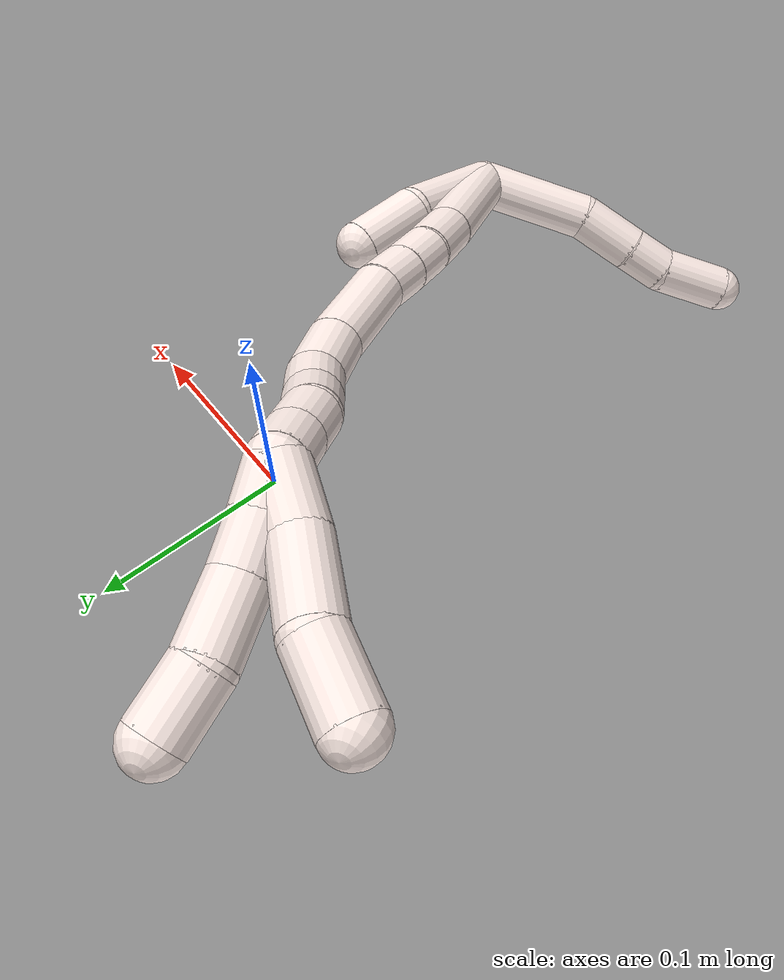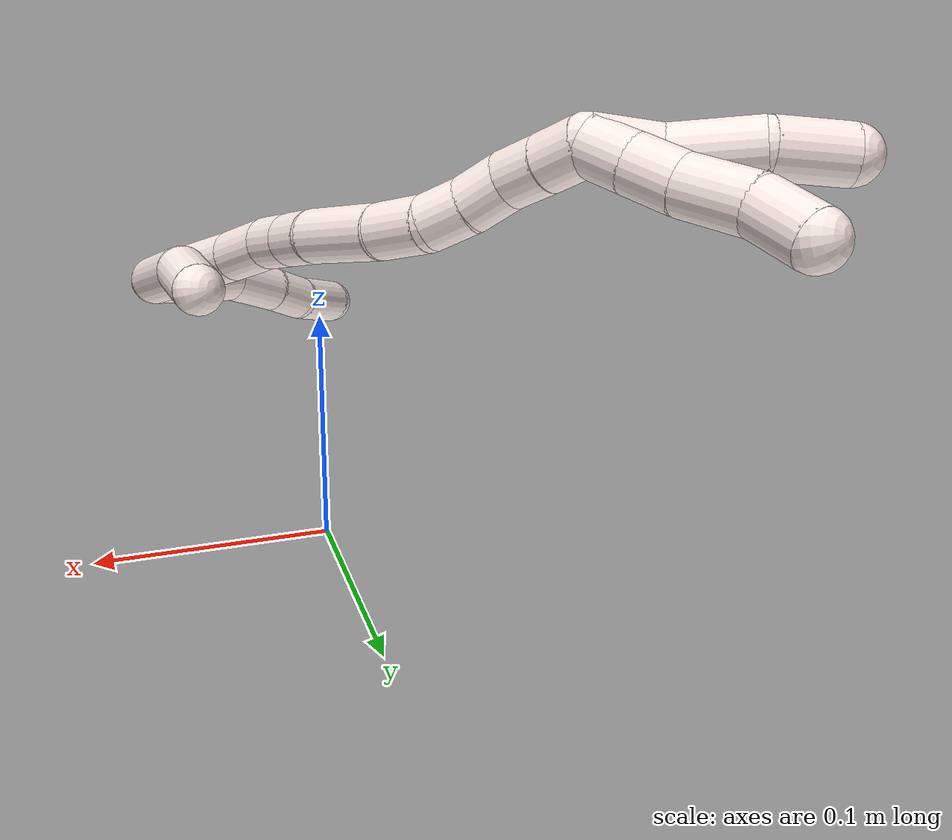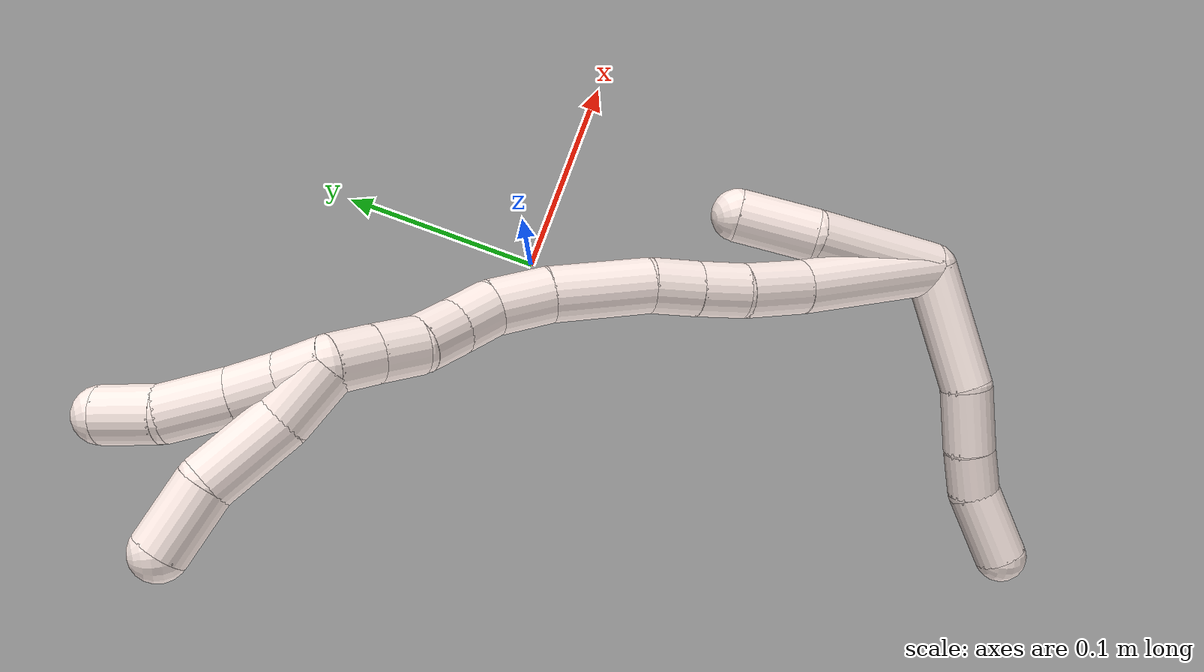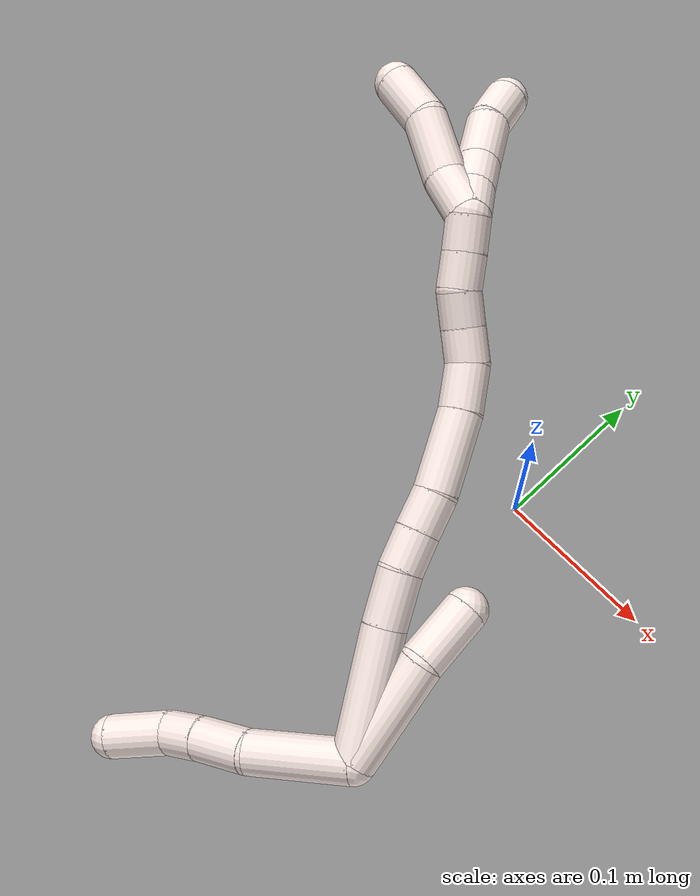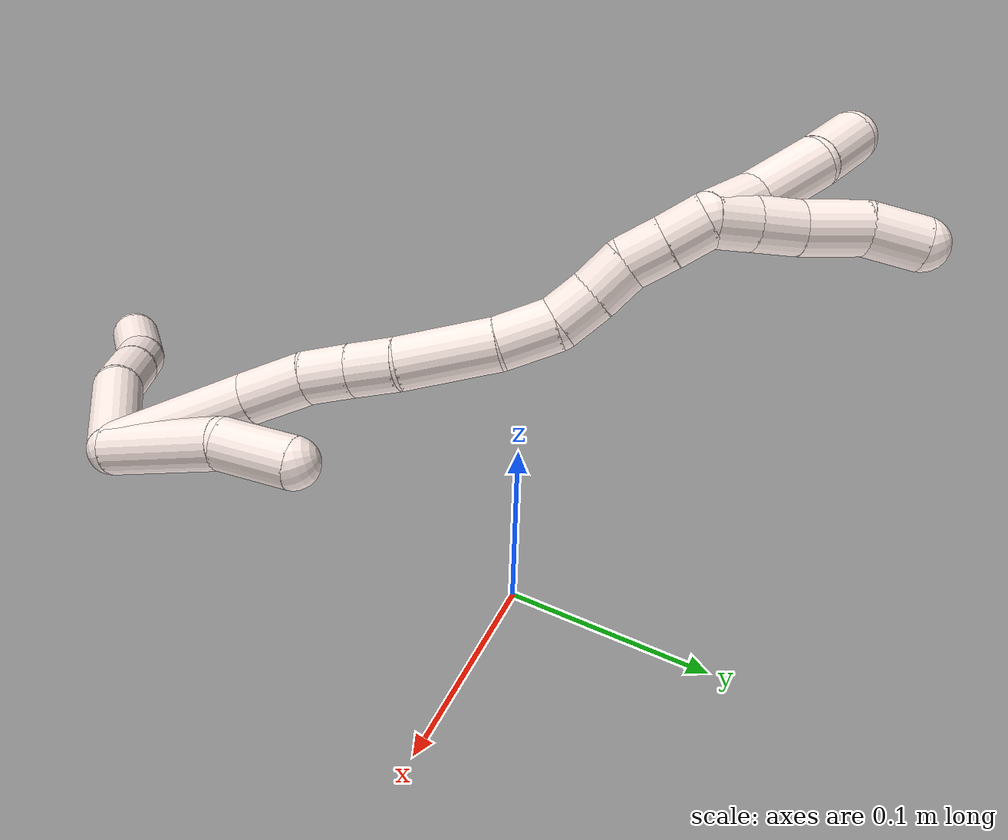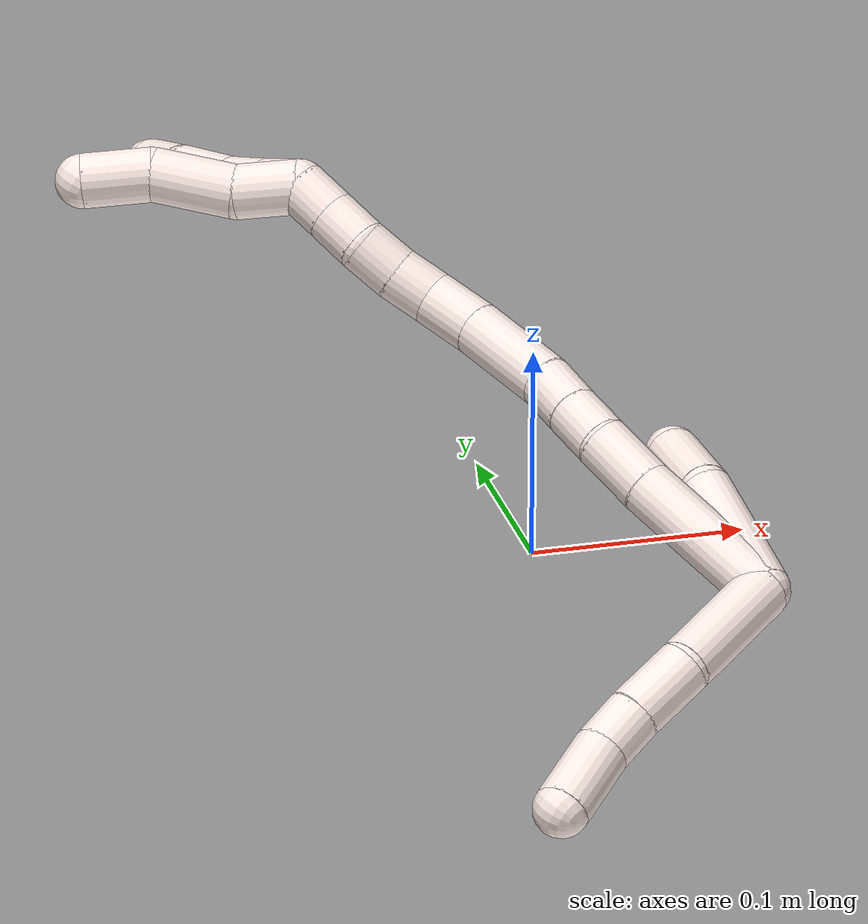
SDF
<sdf version="1.7">
 <world name="default">
  <model name="11">
   <static>0</static>
   <link name="11">
    <collision name="collision-cylinder-e_1_2_8">
     <pose>-0.022499 -0.018658 -0.004541 1.80955 -0.864289 -1.06153</pose>
     <geometry><cylinder><radius>0.0125</radius><length>0.059159</length></cylinder></geometry>
     <surface>
      <friction><ode><mu>1.16</mu><mu2>1.16</mu2><slip1>0</slip1><slip2>0</slip2></ode></friction>
      <contact><ode><kp>1e+06</kp><kd>1</kd><max_vel>0</max_vel><min_depth>0.001</min_depth></ode></contact>
     </surface>
    </collision>
    <visual name="visual-cylinder-e_1_2_8">
     <pose>-0.022499 -0.018658 -0.004541 1.80955 -0.864289 -1.06153</pose>
     <geometry><cylinder><radius>0.0125</radius><length>0.059159</length></cylinder></geometry>
     <material><ambient>1 0.933333 0.909804 1</ambient></material>
    </visual>
    <collision name="collision-cylinder-e_2_8_9">
     <pose>-0.059322 -0.044368 -0.009458 1.624 -1.11271 -1.161</pose>
     <geometry><cylinder><radius>0.0125</radius><length>0.03194</length></cylinder></geometry>
     <surface>
      <friction><ode><mu>1.16</mu><mu2>1.16</mu2><slip1>0</slip1><slip2>0</slip2></ode></friction>
      <contact><ode><kp>1e+06</kp><kd>1</kd><max_vel>0</max_vel><min_depth>0.001</min_depth></ode></contact>
     </surface>
    </collision>
    <visual name="visual-cylinder-e_2_8_9">
     <pose>-0.059322 -0.044368 -0.009458 1.624 -1.11271 -1.161</pose>
     <geometry><cylinder><radius>0.0125</radius><length>0.03194</length></cylinder></geometry>
     <material><ambient>1 0.933333 0.909804 1</ambient></material>
    </visual>
    <collision name="collision-cylinder-e_3_9_10">
     <pose>-0.0837 -0.056023 -0.010849 1.78788 -1.13245 -1.33862</pose>
     <geometry><cylinder><radius>0.0125</radius><length>0.022211</length></cylinder></geometry>
     <surface>
      <friction><ode><mu>1.16</mu><mu2>1.16</mu2><slip1>0</slip1><slip2>0</slip2></ode></friction>
      <contact><ode><kp>1e+06</kp><kd>1</kd><max_vel>0</max_vel><min_depth>0.001</min_depth></ode></contact>
     </surface>
    </collision>
    <visual name="visual-cylinder-e_3_9_10">
     <pose>-0.0837 -0.056023 -0.010849 1.78788 -1.13245 -1.33862</pose>
     <geometry><cylinder><radius>0.0125</radius><length>0.022211</length></cylinder></geometry>
     <material><ambient>1 0.933333 0.909804 1</ambient></material>
    </visual>
    <collision name="collision-cylinder-e_4_10_6">
     <pose>-0.108095 -0.070746 -0.017205 2.0564 -0.897298 -1.34749</pose>
     <geometry><cylinder><radius>0.0125</radius><length>0.036691</length></cylinder></geometry>
     <surface>
      <friction><ode><mu>1.16</mu><mu2>1.16</mu2><slip1>0</slip1><slip2>0</slip2></ode></friction>
      <contact><ode><kp>1e+06</kp><kd>1</kd><max_vel>0</max_vel><min_depth>0.001</min_depth></ode></contact>
     </surface>
    </collision>
    <visual name="visual-cylinder-e_4_10_6">
     <pose>-0.108095 -0.070746 -0.017205 2.0564 -0.897298 -1.34749</pose>
     <geometry><cylinder><radius>0.0125</radius><length>0.036691</length></cylinder></geometry>
     <material><ambient>1 0.933333 0.909804 1</ambient></material>
    </visual>
    <collision name="collision-cylinder-e_1_2_11">
     <pose>0.00972 0.007414 0.029017 -0.25014 0.313811 -0.039776</pose>
     <geometry><cylinder><radius>0.0125</radius><length>0.062975</length></cylinder></geometry>
     <surface>
      <friction><ode><mu>1.16</mu><mu2>1.16</mu2><slip1>0</slip1><slip2>0</slip2></ode></friction>
      <contact><ode><kp>1e+06</kp><kd>1</kd><max_vel>0</max_vel><min_depth>0.001</min_depth></ode></contact>
     </surface>
    </collision>
    <visual name="visual-cylinder-e_1_2_11">
     <pose>0.00972 0.007414 0.029017 -0.25014 0.313811 -0.039776</pose>
     <geometry><cylinder><radius>0.0125</radius><length>0.062975</length></cylinder></geometry>
     <material><ambient>1 0.933333 0.909804 1</ambient></material>
    </visual>
    <collision name="collision-cylinder-e_2_11_5">
     <pose>0.021684 0.023927 0.074 -0.518055 0.121541 -0.032243</pose>
     <geometry><cylinder><radius>0.0125</radius><length>0.037025</length></cylinder></geometry>
     <surface>
      <friction><ode><mu>1.16</mu><mu2>1.16</mu2><slip1>0</slip1><slip2>0</slip2></ode></friction>
      <contact><ode><kp>1e+06</kp><kd>1</kd><max_vel>0</max_vel><min_depth>0.001</min_depth></ode></contact>
     </surface>
    </collision>
    <visual name="visual-cylinder-e_2_11_5">
     <pose>0.021684 0.023927 0.074 -0.518055 0.121541 -0.032243</pose>
     <geometry><cylinder><radius>0.0125</radius><length>0.037025</length></cylinder></geometry>
     <material><ambient>1 0.933333 0.909804 1</ambient></material>
    </visual>
    <collision name="collision-cylinder-e_1_2_12">
     <pose>0.003035 -0.001858 0.036033 0.051508 0.083914 0.002163</pose>
     <geometry><cylinder><radius>0.0125</radius><length>0.072417</length></cylinder></geometry>
     <surface>
      <friction><ode><mu>1.16</mu><mu2>1.16</mu2><slip1>0</slip1><slip2>0</slip2></ode></friction>
      <contact><ode><kp>1e+06</kp><kd>1</kd><max_vel>0</max_vel><min_depth>0.001</min_depth></ode></contact>
     </surface>
    </collision>
    <visual name="visual-cylinder-e_1_2_12">
     <pose>0.003035 -0.001858 0.036033 0.051508 0.083914 0.002163</pose>
     <geometry><cylinder><radius>0.0125</radius><length>0.072417</length></cylinder></geometry>
     <material><ambient>1 0.933333 0.909804 1</ambient></material>
    </visual>
    <collision name="collision-cylinder-e_2_12_13">
     <pose>0.008223 -0.004095 0.087219 0.025064 0.141098 0.001771</pose>
     <geometry><cylinder><radius>0.0125</radius><length>0.030619</length></cylinder></geometry>
     <surface>
      <friction><ode><mu>1.16</mu><mu2>1.16</mu2><slip1>0</slip1><slip2>0</slip2></ode></friction>
      <contact><ode><kp>1e+06</kp><kd>1</kd><max_vel>0</max_vel><min_depth>0.001</min_depth></ode></contact>
     </surface>
    </collision>
    <visual name="visual-cylinder-e_2_12_13">
     <pose>0.008223 -0.004095 0.087219 0.025064 0.141098 0.001771</pose>
     <geometry><cylinder><radius>0.0125</radius><length>0.030619</length></cylinder></geometry>
     <material><ambient>1 0.933333 0.909804 1</ambient></material>
    </visual>
    <collision name="collision-cylinder-e_3_13_14">
     <pose>0.011898 -0.002886 0.113285 -0.144575 0.137201 -0.009951</pose>
     <geometry><cylinder><radius>0.0125</radius><length>0.022265</length></cylinder></geometry>
     <surface>
      <friction><ode><mu>1.16</mu><mu2>1.16</mu2><slip1>0</slip1><slip2>0</slip2></ode></friction>
      <contact><ode><kp>1e+06</kp><kd>1</kd><max_vel>0</max_vel><min_depth>0.001</min_depth></ode></contact>
     </surface>
    </collision>
    <visual name="visual-cylinder-e_3_13_14">
     <pose>0.011898 -0.002886 0.113285 -0.144575 0.137201 -0.009951</pose>
     <geometry><cylinder><radius>0.0125</radius><length>0.022265</length></cylinder></geometry>
     <material><ambient>1 0.933333 0.909804 1</ambient></material>
    </visual>
    <collision name="collision-cylinder-e_4_14_15">
     <pose>0.015175 0.000517 0.135011 -0.166276 0.158623 -0.013246</pose>
     <geometry><cylinder><radius>0.0125</radius><length>0.022209</length></cylinder></geometry>
     <surface>
      <friction><ode><mu>1.16</mu><mu2>1.16</mu2><slip1>0</slip1><slip2>0</slip2></ode></friction>
      <contact><ode><kp>1e+06</kp><kd>1</kd><max_vel>0</max_vel><min_depth>0.001</min_depth></ode></contact>
     </surface>
    </collision>
    <visual name="visual-cylinder-e_4_14_15">
     <pose>0.015175 0.000517 0.135011 -0.166276 0.158623 -0.013246</pose>
     <geometry><cylinder><radius>0.0125</radius><length>0.022209</length></cylinder></geometry>
     <material><ambient>1 0.933333 0.909804 1</ambient></material>
    </visual>
    <collision name="collision-cylinder-e_5_15_16">
     <pose>0.017354 0.004345 0.168634 -0.087997 0.018575 -0.000818</pose>
     <geometry><cylinder><radius>0.0125</radius><length>0.045805</length></cylinder></geometry>
     <surface>
      <friction><ode><mu>1.16</mu><mu2>1.16</mu2><slip1>0</slip1><slip2>0</slip2></ode></friction>
      <contact><ode><kp>1e+06</kp><kd>1</kd><max_vel>0</max_vel><min_depth>0.001</min_depth></ode></contact>
     </surface>
    </collision>
    <visual name="visual-cylinder-e_5_15_16">
     <pose>0.017354 0.004345 0.168634 -0.087997 0.018575 -0.000818</pose>
     <geometry><cylinder><radius>0.0125</radius><length>0.045805</length></cylinder></geometry>
     <material><ambient>1 0.933333 0.909804 1</ambient></material>
    </visual>
    <collision name="collision-cylinder-e_6_16_17">
     <pose>0.017403 0.005605 0.204757 0.056412 -0.02827 -0.000798</pose>
     <geometry><cylinder><radius>0.0125</radius><length>0.026679</length></cylinder></geometry>
     <surface>
      <friction><ode><mu>1.16</mu><mu2>1.16</mu2><slip1>0</slip1><slip2>0</slip2></ode></friction>
      <contact><ode><kp>1e+06</kp><kd>1</kd><max_vel>0</max_vel><min_depth>0.001</min_depth></ode></contact>
     </surface>
    </collision>
    <visual name="visual-cylinder-e_6_16_17">
     <pose>0.017403 0.005605 0.204757 0.056412 -0.02827 -0.000798</pose>
     <geometry><cylinder><radius>0.0125</radius><length>0.026679</length></cylinder></geometry>
     <material><ambient>1 0.933333 0.909804 1</ambient></material>
    </visual>
    <collision name="collision-cylinder-e_7_17_18">
     <pose>0.016705 0.001002 0.227297 0.395407 -0.032037 -0.006418</pose>
     <geometry><cylinder><radius>0.0125</radius><length>0.020006</length></cylinder></geometry>
     <surface>
      <friction><ode><mu>1.16</mu><mu2>1.16</mu2><slip1>0</slip1><slip2>0</slip2></ode></friction>
      <contact><ode><kp>1e+06</kp><kd>1</kd><max_vel>0</max_vel><min_depth>0.001</min_depth></ode></contact>
     </surface>
    </collision>
    <visual name="visual-cylinder-e_7_17_18">
     <pose>0.016705 0.001002 0.227297 0.395407 -0.032037 -0.006418</pose>
     <geometry><cylinder><radius>0.0125</radius><length>0.020006</length></cylinder></geometry>
     <material><ambient>1 0.933333 0.909804 1</ambient></material>
    </visual>
    <collision name="collision-cylinder-e_8_18_19">
     <pose>0.017094 -0.007356 0.245422 0.468793 0.071031 0.016968</pose>
     <geometry><cylinder><radius>0.0125</radius><length>0.02</length></cylinder></geometry>
     <surface>
      <friction><ode><mu>1.16</mu><mu2>1.16</mu2><slip1>0</slip1><slip2>0</slip2></ode></friction>
      <contact><ode><kp>1e+06</kp><kd>1</kd><max_vel>0</max_vel><min_depth>0.001</min_depth></ode></contact>
     </surface>
    </collision>
    <visual name="visual-cylinder-e_8_18_19">
     <pose>0.017094 -0.007356 0.245422 0.468793 0.071031 0.016968</pose>
     <geometry><cylinder><radius>0.0125</radius><length>0.02</length></cylinder></geometry>
     <material><ambient>1 0.933333 0.909804 1</ambient></material>
    </visual>
    <collision name="collision-cylinder-e_9_19_20">
     <pose>0.018968 -0.01356 0.264107 0.171736 0.116628 0.010051</pose>
     <geometry><cylinder><radius>0.0125</radius><length>0.02</length></cylinder></geometry>
     <surface>
      <friction><ode><mu>1.16</mu><mu2>1.16</mu2><slip1>0</slip1><slip2>0</slip2></ode></friction>
      <contact><ode><kp>1e+06</kp><kd>1</kd><max_vel>0</max_vel><min_depth>0.001</min_depth></ode></contact>
     </surface>
    </collision>
    <visual name="visual-cylinder-e_9_19_20">
     <pose>0.018968 -0.01356 0.264107 0.171736 0.116628 0.010051</pose>
     <geometry><cylinder><radius>0.0125</radius><length>0.02</length></cylinder></geometry>
     <material><ambient>1 0.933333 0.909804 1</ambient></material>
    </visual>
    <collision name="collision-cylinder-e_10_20_1">
     <pose>0.021268 -0.017293 0.283617 0.20636 0.11386 0.011803</pose>
     <geometry><cylinder><radius>0.0125</radius><length>0.02</length></cylinder></geometry>
     <surface>
      <friction><ode><mu>1.16</mu><mu2>1.16</mu2><slip1>0</slip1><slip2>0</slip2></ode></friction>
      <contact><ode><kp>1e+06</kp><kd>1</kd><max_vel>0</max_vel><min_depth>0.001</min_depth></ode></contact>
     </surface>
    </collision>
    <visual name="visual-cylinder-e_10_20_1">
     <pose>0.021268 -0.017293 0.283617 0.20636 0.11386 0.011803</pose>
     <geometry><cylinder><radius>0.0125</radius><length>0.02</length></cylinder></geometry>
     <material><ambient>1 0.933333 0.909804 1</ambient></material>
    </visual>
    <collision name="collision-cylinder-e_1_1_21">
     <pose>0.017949 -0.016794 0.302005 -0.28466 -0.458424 0.066842</pose>
     <geometry><cylinder><radius>0.0125</radius><length>0.02013</length></cylinder></geometry>
     <surface>
      <friction><ode><mu>1.16</mu><mu2>1.16</mu2><slip1>0</slip1><slip2>0</slip2></ode></friction>
      <contact><ode><kp>1e+06</kp><kd>1</kd><max_vel>0</max_vel><min_depth>0.001</min_depth></ode></contact>
     </surface>
    </collision>
    <visual name="visual-cylinder-e_1_1_21">
     <pose>0.017949 -0.016794 0.302005 -0.28466 -0.458424 0.066842</pose>
     <geometry><cylinder><radius>0.0125</radius><length>0.02013</length></cylinder></geometry>
     <material><ambient>1 0.933333 0.909804 1</ambient></material>
    </visual>
    <collision name="collision-cylinder-e_2_21_22">
     <pose>0.009052 -0.01124 0.320367 -0.301733 -0.412323 0.063564</pose>
     <geometry><cylinder><radius>0.0125</radius><length>0.022175</length></cylinder></geometry>
     <surface>
      <friction><ode><mu>1.16</mu><mu2>1.16</mu2><slip1>0</slip1><slip2>0</slip2></ode></friction>
      <contact><ode><kp>1e+06</kp><kd>1</kd><max_vel>0</max_vel><min_depth>0.001</min_depth></ode></contact>
     </surface>
    </collision>
    <visual name="visual-cylinder-e_2_21_22">
     <pose>0.009052 -0.01124 0.320367 -0.301733 -0.412323 0.063564</pose>
     <geometry><cylinder><radius>0.0125</radius><length>0.022175</length></cylinder></geometry>
     <material><ambient>1 0.933333 0.909804 1</ambient></material>
    </visual>
    <collision name="collision-cylinder-e_3_22_23">
     <pose>7.8e-05 -0.004834 0.344427 -0.231658 -0.297923 0.034918</pose>
     <geometry><cylinder><radius>0.0125</radius><length>0.03087</length></cylinder></geometry>
     <surface>
      <friction><ode><mu>1.16</mu><mu2>1.16</mu2><slip1>0</slip1><slip2>0</slip2></ode></friction>
      <contact><ode><kp>1e+06</kp><kd>1</kd><max_vel>0</max_vel><min_depth>0.001</min_depth></ode></contact>
     </surface>
    </collision>
    <visual name="visual-cylinder-e_3_22_23">
     <pose>7.8e-05 -0.004834 0.344427 -0.231658 -0.297923 0.034918</pose>
     <geometry><cylinder><radius>0.0125</radius><length>0.03087</length></cylinder></geometry>
     <material><ambient>1 0.933333 0.909804 1</ambient></material>
    </visual>
    <collision name="collision-cylinder-e_4_23_4">
     <pose>-0.007616 0.005041 0.370093 -0.520915 -0.238124 0.063743</pose>
     <geometry><cylinder><radius>0.0125</radius><length>0.026825</length></cylinder></geometry>
     <surface>
      <friction><ode><mu>1.16</mu><mu2>1.16</mu2><slip1>0</slip1><slip2>0</slip2></ode></friction>
      <contact><ode><kp>1e+06</kp><kd>1</kd><max_vel>0</max_vel><min_depth>0.001</min_depth></ode></contact>
     </surface>
    </collision>
    <visual name="visual-cylinder-e_4_23_4">
     <pose>-0.007616 0.005041 0.370093 -0.520915 -0.238124 0.063743</pose>
     <geometry><cylinder><radius>0.0125</radius><length>0.026825</length></cylinder></geometry>
     <material><ambient>1 0.933333 0.909804 1</ambient></material>
    </visual>
    <collision name="collision-cylinder-e_1_1_24">
     <pose>0.013008 -0.022783 0.303962 0.314529 -0.699413 -0.115534</pose>
     <geometry><cylinder><radius>0.0125</radius><length>0.029188</length></cylinder></geometry>
     <surface>
      <friction><ode><mu>1.16</mu><mu2>1.16</mu2><slip1>0</slip1><slip2>0</slip2></ode></friction>
      <contact><ode><kp>1e+06</kp><kd>1</kd><max_vel>0</max_vel><min_depth>0.001</min_depth></ode></contact>
     </surface>
    </collision>
    <visual name="visual-cylinder-e_1_1_24">
     <pose>0.013008 -0.022783 0.303962 0.314529 -0.699413 -0.115534</pose>
     <geometry><cylinder><radius>0.0125</radius><length>0.029188</length></cylinder></geometry>
     <material><ambient>1 0.933333 0.909804 1</ambient></material>
    </visual>
    <collision name="collision-cylinder-e_2_24_25">
     <pose>-0.004171 -0.032079 0.331345 0.335259 -0.413243 -0.070911</pose>
     <geometry><cylinder><radius>0.0125</radius><length>0.038768</length></cylinder></geometry>
     <surface>
      <friction><ode><mu>1.16</mu><mu2>1.16</mu2><slip1>0</slip1><slip2>0</slip2></ode></friction>
      <contact><ode><kp>1e+06</kp><kd>1</kd><max_vel>0</max_vel><min_depth>0.001</min_depth></ode></contact>
     </surface>
    </collision>
    <visual name="visual-cylinder-e_2_24_25">
     <pose>-0.004171 -0.032079 0.331345 0.335259 -0.413243 -0.070911</pose>
     <geometry><cylinder><radius>0.0125</radius><length>0.038768</length></cylinder></geometry>
     <material><ambient>1 0.933333 0.909804 1</ambient></material>
    </visual>
    <collision name="collision-cylinder-e_3_25_3">
     <pose>-0.02249 -0.043467 0.358831 0.477471 -0.717524 -0.182024</pose>
     <geometry><cylinder><radius>0.0125</radius><length>0.032044</length></cylinder></geometry>
     <surface>
      <friction><ode><mu>1.16</mu><mu2>1.16</mu2><slip1>0</slip1><slip2>0</slip2></ode></friction>
      <contact><ode><kp>1e+06</kp><kd>1</kd><max_vel>0</max_vel><min_depth>0.001</min_depth></ode></contact>
     </surface>
    </collision>
    <visual name="visual-cylinder-e_3_25_3">
     <pose>-0.02249 -0.043467 0.358831 0.477471 -0.717524 -0.182024</pose>
     <geometry><cylinder><radius>0.0125</radius><length>0.032044</length></cylinder></geometry>
     <material><ambient>1 0.933333 0.909804 1</ambient></material>
    </visual>
    <collision name="collision-sphere-3">
     <pose>-0.033025 -0.049014 0.369552 0 -0 0</pose>
     <geometry><sphere><radius>0.0125</radius></sphere></geometry>
     <surface>
      <friction><ode><mu>1.16</mu><mu2>1.16</mu2><slip1>0</slip1><slip2>0</slip2></ode></friction>
      <contact><ode><kp>1e+06</kp><kd>1</kd><max_vel>0</max_vel><min_depth>0.001</min_depth></ode></contact>
     </surface>
    </collision>
    <visual name="visual-sphere-3">
     <pose>-0.033025 -0.049014 0.369552 0 -0 0</pose>
     <geometry><sphere><radius>0.0125</radius></sphere></geometry>
     <material><ambient>1 0.933333 0.909804 1</ambient></material>
    </visual>
    <collision name="collision-sphere-25">
     <pose>-0.011955 -0.03792 0.348109 0 -0 0</pose>
     <geometry><sphere><radius>0.0125</radius></sphere></geometry>
     <surface>
      <friction><ode><mu>1.16</mu><mu2>1.16</mu2><slip1>0</slip1><slip2>0</slip2></ode></friction>
      <contact><ode><kp>1e+06</kp><kd>1</kd><max_vel>0</max_vel><min_depth>0.001</min_depth></ode></contact>
     </surface>
    </collision>
    <visual name="visual-sphere-25">
     <pose>-0.011955 -0.03792 0.348109 0 -0 0</pose>
     <geometry><sphere><radius>0.0125</radius></sphere></geometry>
     <material><ambient>1 0.933333 0.909804 1</ambient></material>
    </visual>
    <collision name="collision-sphere-24">
     <pose>0.003613 -0.026238 0.314581 0 -0 0</pose>
     <geometry><sphere><radius>0.0125</radius></sphere></geometry>
     <surface>
      <friction><ode><mu>1.16</mu><mu2>1.16</mu2><slip1>0</slip1><slip2>0</slip2></ode></friction>
      <contact><ode><kp>1e+06</kp><kd>1</kd><max_vel>0</max_vel><min_depth>0.001</min_depth></ode></contact>
     </surface>
    </collision>
    <visual name="visual-sphere-24">
     <pose>0.003613 -0.026238 0.314581 0 -0 0</pose>
     <geometry><sphere><radius>0.0125</radius></sphere></geometry>
     <material><ambient>1 0.933333 0.909804 1</ambient></material>
    </visual>
    <collision name="collision-sphere-4">
     <pose>-0.01078 0.011527 0.381398 0 -0 0</pose>
     <geometry><sphere><radius>0.0125</radius></sphere></geometry>
     <surface>
      <friction><ode><mu>1.16</mu><mu2>1.16</mu2><slip1>0</slip1><slip2>0</slip2></ode></friction>
      <contact><ode><kp>1e+06</kp><kd>1</kd><max_vel>0</max_vel><min_depth>0.001</min_depth></ode></contact>
     </surface>
    </collision>
    <visual name="visual-sphere-4">
     <pose>-0.01078 0.011527 0.381398 0 -0 0</pose>
     <geometry><sphere><radius>0.0125</radius></sphere></geometry>
     <material><ambient>1 0.933333 0.909804 1</ambient></material>
    </visual>
    <collision name="collision-sphere-23">
     <pose>-0.004453 -0.001446 0.358788 0 -0 0</pose>
     <geometry><sphere><radius>0.0125</radius></sphere></geometry>
     <surface>
      <friction><ode><mu>1.16</mu><mu2>1.16</mu2><slip1>0</slip1><slip2>0</slip2></ode></friction>
      <contact><ode><kp>1e+06</kp><kd>1</kd><max_vel>0</max_vel><min_depth>0.001</min_depth></ode></contact>
     </surface>
    </collision>
    <visual name="visual-sphere-23">
     <pose>-0.004453 -0.001446 0.358788 0 -0 0</pose>
     <geometry><sphere><radius>0.0125</radius></sphere></geometry>
     <material><ambient>1 0.933333 0.909804 1</ambient></material>
    </visual>
    <collision name="collision-sphere-22">
     <pose>0.004609 -0.008221 0.330066 0 -0 0</pose>
     <geometry><sphere><radius>0.0125</radius></sphere></geometry>
     <surface>
      <friction><ode><mu>1.16</mu><mu2>1.16</mu2><slip1>0</slip1><slip2>0</slip2></ode></friction>
      <contact><ode><kp>1e+06</kp><kd>1</kd><max_vel>0</max_vel><min_depth>0.001</min_depth></ode></contact>
     </surface>
    </collision>
    <visual name="visual-sphere-22">
     <pose>0.004609 -0.008221 0.330066 0 -0 0</pose>
     <geometry><sphere><radius>0.0125</radius></sphere></geometry>
     <material><ambient>1 0.933333 0.909804 1</ambient></material>
    </visual>
    <collision name="collision-sphere-21">
     <pose>0.013495 -0.014259 0.310667 0 -0 0</pose>
     <geometry><sphere><radius>0.0125</radius></sphere></geometry>
     <surface>
      <friction><ode><mu>1.16</mu><mu2>1.16</mu2><slip1>0</slip1><slip2>0</slip2></ode></friction>
      <contact><ode><kp>1e+06</kp><kd>1</kd><max_vel>0</max_vel><min_depth>0.001</min_depth></ode></contact>
     </surface>
    </collision>
    <visual name="visual-sphere-21">
     <pose>0.013495 -0.014259 0.310667 0 -0 0</pose>
     <geometry><sphere><radius>0.0125</radius></sphere></geometry>
     <material><ambient>1 0.933333 0.909804 1</ambient></material>
    </visual>
    <collision name="collision-sphere-1">
     <pose>0.022404 -0.019328 0.293342 0 -0 0</pose>
     <geometry><sphere><radius>0.0125</radius></sphere></geometry>
     <surface>
      <friction><ode><mu>1.16</mu><mu2>1.16</mu2><slip1>0</slip1><slip2>0</slip2></ode></friction>
      <contact><ode><kp>1e+06</kp><kd>1</kd><max_vel>0</max_vel><min_depth>0.001</min_depth></ode></contact>
     </surface>
    </collision>
    <visual name="visual-sphere-1">
     <pose>0.022404 -0.019328 0.293342 0 -0 0</pose>
     <geometry><sphere><radius>0.0125</radius></sphere></geometry>
     <material><ambient>1 0.933333 0.909804 1</ambient></material>
    </visual>
    <collision name="collision-sphere-11">
     <pose>0.019439 0.014827 0.058035 0 -0 0</pose>
     <geometry><sphere><radius>0.0125</radius></sphere></geometry>
     <surface>
      <friction><ode><mu>1.16</mu><mu2>1.16</mu2><slip1>0</slip1><slip2>0</slip2></ode></friction>
      <contact><ode><kp>1e+06</kp><kd>1</kd><max_vel>0</max_vel><min_depth>0.001</min_depth></ode></contact>
     </surface>
    </collision>
    <visual name="visual-sphere-11">
     <pose>0.019439 0.014827 0.058035 0 -0 0</pose>
     <geometry><sphere><radius>0.0125</radius></sphere></geometry>
     <material><ambient>1 0.933333 0.909804 1</ambient></material>
    </visual>
    <collision name="collision-sphere-6">
     <pose>-0.122435 -0.080865 -0.022545 0 -0 0</pose>
     <geometry><sphere><radius>0.0125</radius></sphere></geometry>
     <surface>
      <friction><ode><mu>1.16</mu><mu2>1.16</mu2><slip1>0</slip1><slip2>0</slip2></ode></friction>
      <contact><ode><kp>1e+06</kp><kd>1</kd><max_vel>0</max_vel><min_depth>0.001</min_depth></ode></contact>
     </surface>
    </collision>
    <visual name="visual-sphere-6">
     <pose>-0.122435 -0.080865 -0.022545 0 -0 0</pose>
     <geometry><sphere><radius>0.0125</radius></sphere></geometry>
     <material><ambient>1 0.933333 0.909804 1</ambient></material>
    </visual>
    <collision name="collision-sphere-10">
     <pose>-0.093756 -0.060626 -0.011864 0 -0 0</pose>
     <geometry><sphere><radius>0.0125</radius></sphere></geometry>
     <surface>
      <friction><ode><mu>1.16</mu><mu2>1.16</mu2><slip1>0</slip1><slip2>0</slip2></ode></friction>
      <contact><ode><kp>1e+06</kp><kd>1</kd><max_vel>0</max_vel><min_depth>0.001</min_depth></ode></contact>
     </surface>
    </collision>
    <visual name="visual-sphere-10">
     <pose>-0.093756 -0.060626 -0.011864 0 -0 0</pose>
     <geometry><sphere><radius>0.0125</radius></sphere></geometry>
     <material><ambient>1 0.933333 0.909804 1</ambient></material>
    </visual>
    <collision name="collision-sphere-9">
     <pose>-0.073645 -0.05142 -0.009834 0 -0 0</pose>
     <geometry><sphere><radius>0.0125</radius></sphere></geometry>
     <surface>
      <friction><ode><mu>1.16</mu><mu2>1.16</mu2><slip1>0</slip1><slip2>0</slip2></ode></friction>
      <contact><ode><kp>1e+06</kp><kd>1</kd><max_vel>0</max_vel><min_depth>0.001</min_depth></ode></contact>
     </surface>
    </collision>
    <visual name="visual-sphere-9">
     <pose>-0.073645 -0.05142 -0.009834 0 -0 0</pose>
     <geometry><sphere><radius>0.0125</radius></sphere></geometry>
     <material><ambient>1 0.933333 0.909804 1</ambient></material>
    </visual>
    <collision name="collision-sphere-2">
     <geometry><sphere><radius>0.0125</radius></sphere></geometry>
     <surface>
      <friction><ode><mu>1.16</mu><mu2>1.16</mu2><slip1>0</slip1><slip2>0</slip2></ode></friction>
      <contact><ode><kp>1e+06</kp><kd>1</kd><max_vel>0</max_vel><min_depth>0.001</min_depth></ode></contact>
     </surface>
    </collision>
    <visual name="visual-sphere-2">
     <geometry><sphere><radius>0.0125</radius></sphere></geometry>
     <material><ambient>1 0.933333 0.909804 1</ambient></material>
    </visual>
    <collision name="collision-sphere-19">
     <pose>0.017804 -0.011862 0.254321 0 -0 0</pose>
     <geometry><sphere><radius>0.0125</radius></sphere></geometry>
     <surface>
      <friction><ode><mu>1.16</mu><mu2>1.16</mu2><slip1>0</slip1><slip2>0</slip2></ode></friction>
      <contact><ode><kp>1e+06</kp><kd>1</kd><max_vel>0</max_vel><min_depth>0.001</min_depth></ode></contact>
     </surface>
    </collision>
    <visual name="visual-sphere-19">
     <pose>0.017804 -0.011862 0.254321 0 -0 0</pose>
     <geometry><sphere><radius>0.0125</radius></sphere></geometry>
     <material><ambient>1 0.933333 0.909804 1</ambient></material>
    </visual>
    <collision name="collision-sphere-8">
     <pose>-0.044998 -0.037315 -0.009082 0 -0 0</pose>
     <geometry><sphere><radius>0.0125</radius></sphere></geometry>
     <surface>
      <friction><ode><mu>1.16</mu><mu2>1.16</mu2><slip1>0</slip1><slip2>0</slip2></ode></friction>
      <contact><ode><kp>1e+06</kp><kd>1</kd><max_vel>0</max_vel><min_depth>0.001</min_depth></ode></contact>
     </surface>
    </collision>
    <visual name="visual-sphere-8">
     <pose>-0.044998 -0.037315 -0.009082 0 -0 0</pose>
     <geometry><sphere><radius>0.0125</radius></sphere></geometry>
     <material><ambient>1 0.933333 0.909804 1</ambient></material>
    </visual>
    <collision name="collision-sphere-5">
     <pose>0.023928 0.033027 0.089965 0 -0 0</pose>
     <geometry><sphere><radius>0.0125</radius></sphere></geometry>
     <surface>
      <friction><ode><mu>1.16</mu><mu2>1.16</mu2><slip1>0</slip1><slip2>0</slip2></ode></friction>
      <contact><ode><kp>1e+06</kp><kd>1</kd><max_vel>0</max_vel><min_depth>0.001</min_depth></ode></contact>
     </surface>
    </collision>
    <visual name="visual-sphere-5">
     <pose>0.023928 0.033027 0.089965 0 -0 0</pose>
     <geometry><sphere><radius>0.0125</radius></sphere></geometry>
     <material><ambient>1 0.933333 0.909804 1</ambient></material>
    </visual>
    <collision name="collision-sphere-12">
     <pose>0.00607 -0.003715 0.072067 0 -0 0</pose>
     <geometry><sphere><radius>0.0125</radius></sphere></geometry>
     <surface>
      <friction><ode><mu>1.16</mu><mu2>1.16</mu2><slip1>0</slip1><slip2>0</slip2></ode></friction>
      <contact><ode><kp>1e+06</kp><kd>1</kd><max_vel>0</max_vel><min_depth>0.001</min_depth></ode></contact>
     </surface>
    </collision>
    <visual name="visual-sphere-12">
     <pose>0.00607 -0.003715 0.072067 0 -0 0</pose>
     <geometry><sphere><radius>0.0125</radius></sphere></geometry>
     <material><ambient>1 0.933333 0.909804 1</ambient></material>
    </visual>
    <collision name="collision-sphere-13">
     <pose>0.010376 -0.004475 0.102372 0 -0 0</pose>
     <geometry><sphere><radius>0.0125</radius></sphere></geometry>
     <surface>
      <friction><ode><mu>1.16</mu><mu2>1.16</mu2><slip1>0</slip1><slip2>0</slip2></ode></friction>
      <contact><ode><kp>1e+06</kp><kd>1</kd><max_vel>0</max_vel><min_depth>0.001</min_depth></ode></contact>
     </surface>
    </collision>
    <visual name="visual-sphere-13">
     <pose>0.010376 -0.004475 0.102372 0 -0 0</pose>
     <geometry><sphere><radius>0.0125</radius></sphere></geometry>
     <material><ambient>1 0.933333 0.909804 1</ambient></material>
    </visual>
    <collision name="collision-sphere-14">
     <pose>0.013421 -0.001297 0.124197 0 -0 0</pose>
     <geometry><sphere><radius>0.0125</radius></sphere></geometry>
     <surface>
      <friction><ode><mu>1.16</mu><mu2>1.16</mu2><slip1>0</slip1><slip2>0</slip2></ode></friction>
      <contact><ode><kp>1e+06</kp><kd>1</kd><max_vel>0</max_vel><min_depth>0.001</min_depth></ode></contact>
     </surface>
    </collision>
    <visual name="visual-sphere-14">
     <pose>0.013421 -0.001297 0.124197 0 -0 0</pose>
     <geometry><sphere><radius>0.0125</radius></sphere></geometry>
     <material><ambient>1 0.933333 0.909804 1</ambient></material>
    </visual>
    <collision name="collision-sphere-15">
     <pose>0.016929 0.002332 0.145825 0 -0 0</pose>
     <geometry><sphere><radius>0.0125</radius></sphere></geometry>
     <surface>
      <friction><ode><mu>1.16</mu><mu2>1.16</mu2><slip1>0</slip1><slip2>0</slip2></ode></friction>
      <contact><ode><kp>1e+06</kp><kd>1</kd><max_vel>0</max_vel><min_depth>0.001</min_depth></ode></contact>
     </surface>
    </collision>
    <visual name="visual-sphere-15">
     <pose>0.016929 0.002332 0.145825 0 -0 0</pose>
     <geometry><sphere><radius>0.0125</radius></sphere></geometry>
     <material><ambient>1 0.933333 0.909804 1</ambient></material>
    </visual>
    <collision name="collision-sphere-16">
     <pose>0.01778 0.006357 0.191444 0 -0 0</pose>
     <geometry><sphere><radius>0.0125</radius></sphere></geometry>
     <surface>
      <friction><ode><mu>1.16</mu><mu2>1.16</mu2><slip1>0</slip1><slip2>0</slip2></ode></friction>
      <contact><ode><kp>1e+06</kp><kd>1</kd><max_vel>0</max_vel><min_depth>0.001</min_depth></ode></contact>
     </surface>
    </collision>
    <visual name="visual-sphere-16">
     <pose>0.01778 0.006357 0.191444 0 -0 0</pose>
     <geometry><sphere><radius>0.0125</radius></sphere></geometry>
     <material><ambient>1 0.933333 0.909804 1</ambient></material>
    </visual>
    <collision name="collision-sphere-17">
     <pose>0.017026 0.004853 0.21807 0 -0 0</pose>
     <geometry><sphere><radius>0.0125</radius></sphere></geometry>
     <surface>
      <friction><ode><mu>1.16</mu><mu2>1.16</mu2><slip1>0</slip1><slip2>0</slip2></ode></friction>
      <contact><ode><kp>1e+06</kp><kd>1</kd><max_vel>0</max_vel><min_depth>0.001</min_depth></ode></contact>
     </surface>
    </collision>
    <visual name="visual-sphere-17">
     <pose>0.017026 0.004853 0.21807 0 -0 0</pose>
     <geometry><sphere><radius>0.0125</radius></sphere></geometry>
     <material><ambient>1 0.933333 0.909804 1</ambient></material>
    </visual>
    <collision name="collision-sphere-18">
     <pose>0.016385 -0.002849 0.236523 0 -0 0</pose>
     <geometry><sphere><radius>0.0125</radius></sphere></geometry>
     <surface>
      <friction><ode><mu>1.16</mu><mu2>1.16</mu2><slip1>0</slip1><slip2>0</slip2></ode></friction>
      <contact><ode><kp>1e+06</kp><kd>1</kd><max_vel>0</max_vel><min_depth>0.001</min_depth></ode></contact>
     </surface>
    </collision>
    <visual name="visual-sphere-18">
     <pose>0.016385 -0.002849 0.236523 0 -0 0</pose>
     <geometry><sphere><radius>0.0125</radius></sphere></geometry>
     <material><ambient>1 0.933333 0.909804 1</ambient></material>
    </visual>
    <collision name="collision-sphere-20">
     <pose>0.020131 -0.015257 0.273893 0 -0 0</pose>
     <geometry><sphere><radius>0.0125</radius></sphere></geometry>
     <surface>
      <friction><ode><mu>1.16</mu><mu2>1.16</mu2><slip1>0</slip1><slip2>0</slip2></ode></friction>
      <contact><ode><kp>1e+06</kp><kd>1</kd><max_vel>0</max_vel><min_depth>0.001</min_depth></ode></contact>
     </surface>
    </collision>
    <visual name="visual-sphere-20">
     <pose>0.020131 -0.015257 0.273893 0 -0 0</pose>
     <geometry><sphere><radius>0.0125</radius></sphere></geometry>
     <material><ambient>1 0.933333 0.909804 1</ambient></material>
    </visual>
    <inertial>
     <pose>-0.005287 -0.012826 0.152643 0 -0 0</pose>
     <mass>0.75</mass>
     <inertia><ixx>8.4e-05</ixx><ixy>0</ixy><ixz>0</ixz><iyy>0.000103</iyy><iyz>0</iyz><izz>7.7e-05</izz></inertia>
    </inertial>
   </link>
   <pose>0.052518 -0.186227 0.06237 -1.12673 -0.848975 0.234395</pose>
  </model>
 </world>
</sdf>
